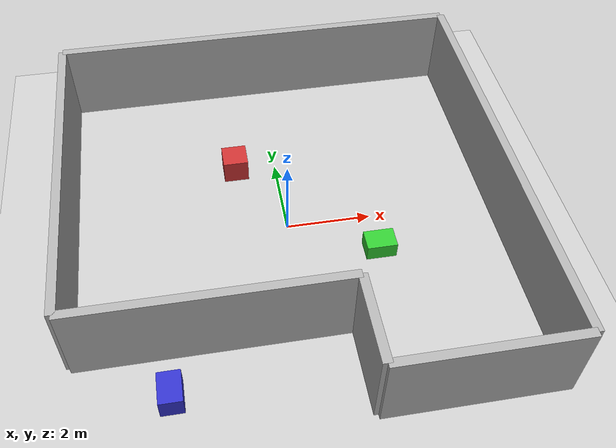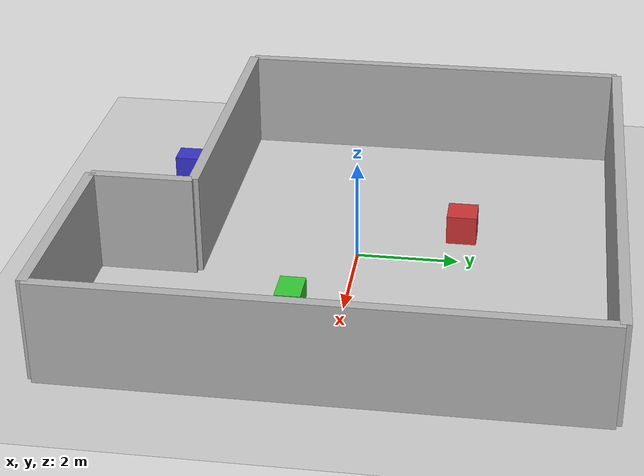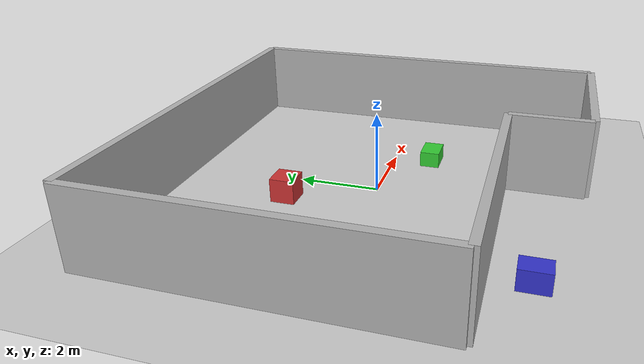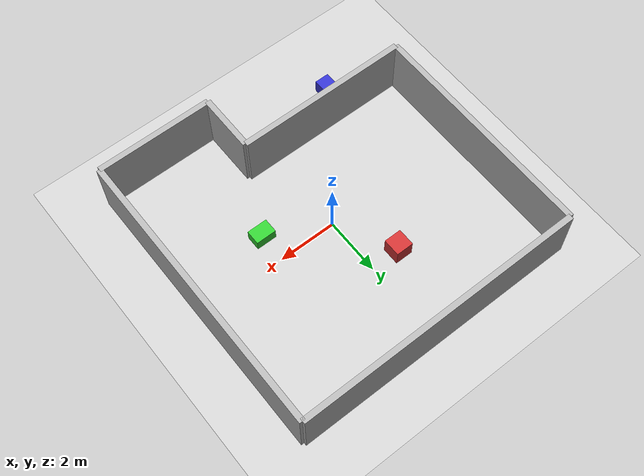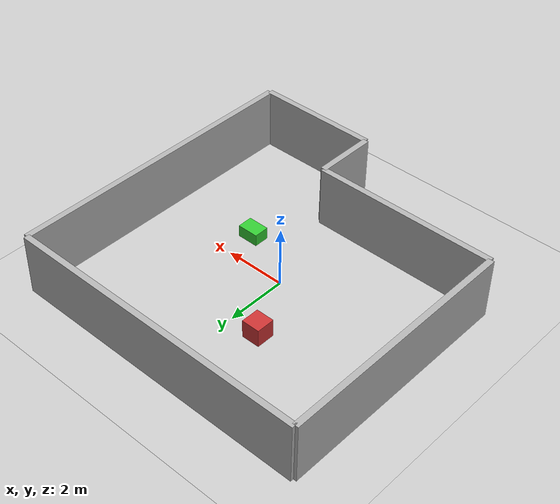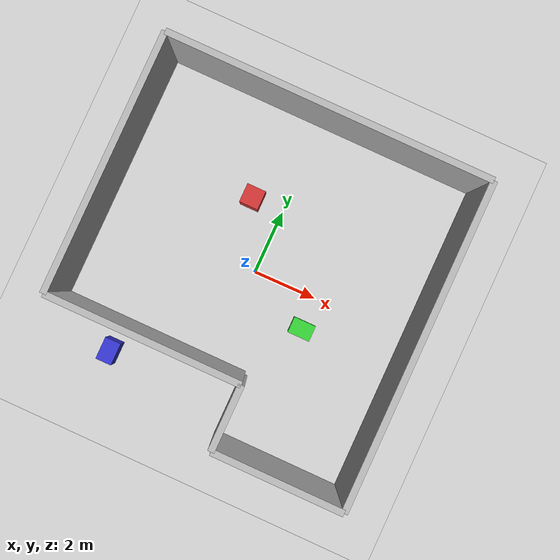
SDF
<?xml version="1.0" ?>
<sdf version="1.6">
  <world name="meu_mundo">
    <!-- Configuração do ambiente -->
    <include>
      <uri>model://sun</uri>
    </include>
    <include>
      <uri>model://ground_plane</uri>
    </include>

    <!-- Definição das paredes para formar um L -->

    <!-- Paredes da área principal -->
    <model name="parede_norte">
      <static>true</static>
      <link name="link">
        <visual name="visual">
          <geometry>
            <box>
              <size>10 0.2 2</size>
            </box>
          </geometry>
          <material>
            <ambient>0.7 0.7 0.7 1</ambient>
          </material>
        </visual>
        <collision name="collision">
          <geometry>
            <box>
              <size>10 0.2 2</size>
            </box>
          </geometry>
        </collision>
        <pose>0 5 1 0 0 0</pose>
      </link>
    </model>

    <model name="parede_oeste">
      <static>true</static>
      <link name="link">
        <visual name="visual">
          <geometry>
            <box>
              <size>0.2 8 2</size>
            </box>
          </geometry>
          <material>
            <ambient>0.7 0.7 0.7 1</ambient>
          </material>
        </visual>
        <collision name="collision">
          <geometry>
            <box>
              <size>0.2 8 2</size>
            </box>
          </geometry>
        </collision>
        <pose>-5 1 1 0 0 0</pose>
      </link>
    </model>

    <model name="parede_oeste_2">
      <static>true</static>
      <link name="link">
        <visual name="visual">
          <geometry>
            <box>
              <size>0.2 2 2</size>
            </box>
          </geometry>
          <material>
            <ambient>0.7 0.7 0.7 1</ambient>
          </material>
        </visual>
        <collision name="collision">
          <geometry>
            <box>
              <size>0.2 2 2</size>
            </box>
          </geometry>
        </collision>
        <pose>1 -4 1 0 0 0</pose>
      </link>
    </model>

    <model name="parede_sul">
      <static>true</static>
      <link name="link">
        <visual name="visual">
          <geometry>
            <box>
              <size>6 0.2 2</size>
            </box>
          </geometry>
          <material>
            <ambient>0.7 0.7 0.7 1</ambient>
          </material>
        </visual>
        <collision name="collision">
          <geometry>
            <box>
              <size>6 0.2 2</size>
            </box>
          </geometry>
        </collision>
        <pose>-2 -3 1 0 0 0</pose>
      </link>
    </model>

    <model name="parede_sul_2">
      <static>true</static>
      <link name="link">
        <visual name="visual">
          <geometry>
            <box>
              <size>4 0.2 2</size>
            </box>
          </geometry>
          <material>
            <ambient>0.7 0.7 0.7 1</ambient>
          </material>
        </visual>
        <collision name="collision">
          <geometry>
            <box>
              <size>4 0.2 2</size>
            </box>
          </geometry>
        </collision>
        <pose>3 -5 1 0 0 0</pose>
      </link>
    </model>

    <model name="parede_leste">
      <static>true</static>
      <link name="link">
        <visual name="visual">
          <geometry>
            <box>
              <size>0.2 10 2</size>
            </box>
          </geometry>
          <material>
            <ambient>0.7 0.7 0.7 1</ambient>
          </material>
        </visual>
        <collision name="collision">
          <geometry>
            <box>
              <size>0.2 10 2</size>
            </box>
          </geometry>
        </collision>
        <pose>5 0 1 0 0 0</pose>
      </link>
    </model>

    <!-- Blocos assimétricos dentro da sala em L -->
    <model name="bloco1">
      <static>true</static>
      <link name="link">
        <visual name="visual">
          <geometry>
            <box>
              <size>0.6 0.6 0.6</size>
            </box>
          </geometry>
          <material>
            <ambient>0.8 0.2 0.2 1</ambient>
          </material>
        </visual>
        <collision name="collision">
          <geometry>
            <box>
              <size>0.6 0.6 0.6</size>
            </box>
          </geometry>
        </collision>
        <pose>-1 2 0.3 0 0 0</pose>
      </link>
    </model>

    <model name="bloco2">
      <static>true</static>
      <link name="link">
        <visual name="visual">
          <geometry>
            <box>
              <size>0.7 0.5 0.4</size>
            </box>
          </geometry>
          <material>
            <ambient>0.2 0.8 0.2 1</ambient>
          </material>
        </visual>
        <collision name="collision">
          <geometry>
            <box>
              <size>0.7 0.5 0.4</size>
            </box>
          </geometry>
        </collision>
        <pose>2 -1 0.2 0 0 0</pose>
      </link>
    </model>

    <model name="bloco3">
      <static>true</static>
      <link name="link">
        <visual name="visual">
          <geometry>
            <box>
              <size>0.5 0.7 0.5</size>
            </box>
          </geometry>
          <material>
            <ambient>0.2 0.2 0.8 1</ambient>
          </material>
        </visual>
        <collision name="collision">
          <geometry>
            <box>
              <size>0.5 0.7 0.5</size>
            </box>
          </geometry>
        </collision>
        <pose>-3 -4 0.25 0 0 0</pose>
      </link>
    </model>
  </world>
</sdf>
